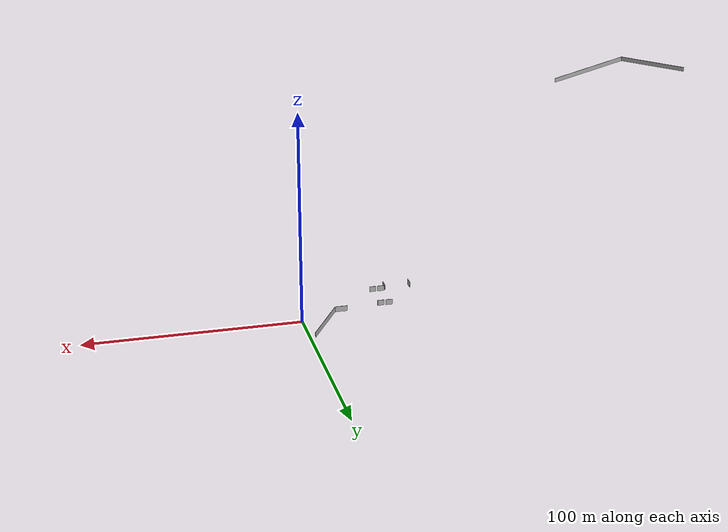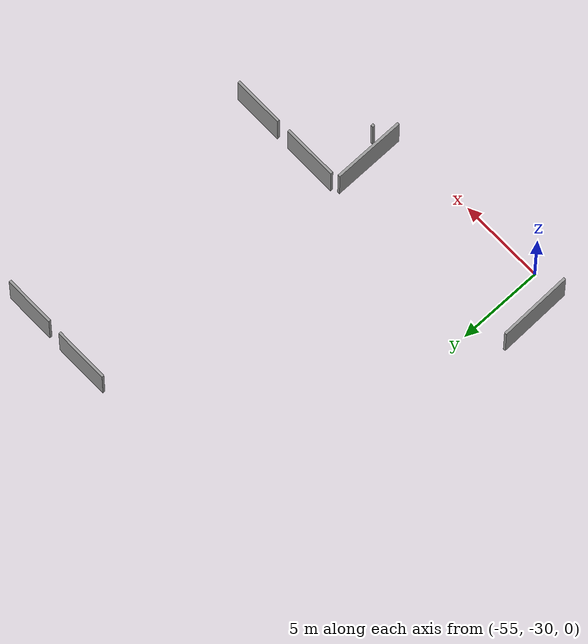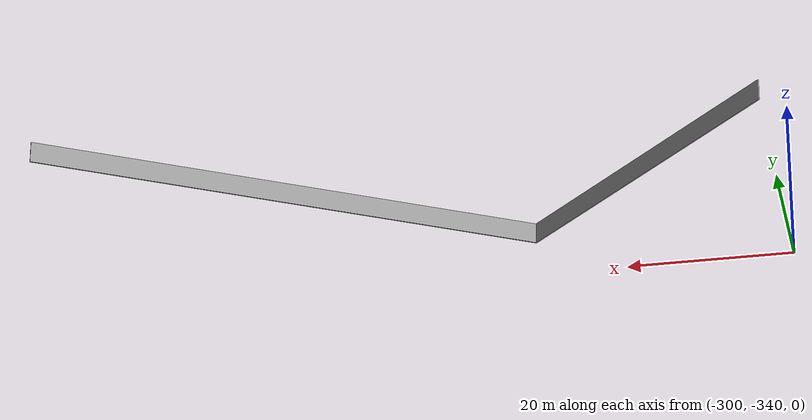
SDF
<?xml version='1.0'?>
<sdf version='1.7'>
  <model name='COMPLEMENTO_LAB'>
    <pose>-150.046 -157.023 0 0 -0 0</pose>
    <link name='Wall_106'>
      <collision name='Wall_106_Collision'>
        <geometry>
          <box>
            <size>61.5 0.15 2.5</size>
          </box>
        </geometry>
        <pose>0 0 1.25 0 -0 0</pose>
      </collision>
      <visual name='Wall_106_Visual'>
        <pose>0 0 1.25 0 -0 0</pose>
        <geometry>
          <box>
            <size>61.5 0.15 2.5</size>
          </box>
        </geometry>
        <material>
          <script>
            <uri>file://media/materials/scripts/gazebo.material</uri>
            <name>Gazebo/Grey</name>
          </script>
          <ambient>1 1 1 1</ambient>
        </material>
        <meta>
          <layer>0</layer>
        </meta>
      </visual>
      <pose>-93.7827 -159.299 0 0 -0 -2.61799</pose>
    </link>
    <link name='Wall_107'>
      <collision name='Wall_107_Collision'>
        <geometry>
          <box>
            <size>42 0.15 2.5</size>
          </box>
        </geometry>
        <pose>0 0 1.25 0 -0 0</pose>
      </collision>
      <visual name='Wall_107_Visual'>
        <pose>0 0 1.25 0 -0 0</pose>
        <geometry>
          <box>
            <size>42 0.15 2.5</size>
          </box>
        </geometry>
        <material>
          <script>
            <uri>file://media/materials/scripts/gazebo.material</uri>
            <name>Gazebo/Grey</name>
          </script>
          <ambient>1 1 1 1</ambient>
        </material>
        <meta>
          <layer>0</layer>
        </meta>
      </visual>
      <pose>-135.144 -159.84 0 0 -0 2.35619</pose>
    </link>
    <link name='Wall_109'>
      <collision name='Wall_109_Collision'>
        <geometry>
          <box>
            <size>5.75 0.15 2.5</size>
          </box>
        </geometry>
        <pose>0 0 1.25 0 -0 0</pose>
      </collision>
      <visual name='Wall_109_Visual'>
        <pose>0 0 1.25 0 -0 0</pose>
        <geometry>
          <box>
            <size>5.75 0.15 2.5</size>
          </box>
        </geometry>
        <material>
          <script>
            <uri>file://media/materials/scripts/gazebo.material</uri>
            <name>Gazebo/Grey</name>
          </script>
          <ambient>1 1 1 1</ambient>
        </material>
        <meta>
          <layer>0</layer>
        </meta>
      </visual>
      <pose>130.354 149.655 0 0 -0 0</pose>
    </link>
    <link name='Wall_110'>
      <collision name='Wall_110_Collision'>
        <geometry>
          <box>
            <size>29 0.15 2.5</size>
          </box>
        </geometry>
        <pose>0 0 1.25 0 -0 0</pose>
      </collision>
      <visual name='Wall_110_Visual'>
        <pose>0 0 1.25 0 -0 0</pose>
        <geometry>
          <box>
            <size>29 0.15 2.5</size>
          </box>
        </geometry>
        <material>
          <script>
            <uri>file://media/materials/scripts/gazebo.material</uri>
            <name>Gazebo/Grey</name>
          </script>
          <ambient>1 1 1 1</ambient>
        </material>
        <meta>
          <layer>0</layer>
        </meta>
      </visual>
      <pose>140.367 162.147 0 0 -0 1.0472</pose>
    </link>
    <link name='Wall_122'>
      <collision name='Wall_122_Collision'>
        <geometry>
          <box>
            <size>3 0.15 2.5</size>
          </box>
        </geometry>
        <pose>0 0 1.25 0 -0 0</pose>
      </collision>
      <visual name='Wall_122_Visual'>
        <pose>0 0 1.25 0 -0 0</pose>
        <geometry>
          <box>
            <size>3 0.15 2.5</size>
          </box>
        </geometry>
        <material>
          <script>
            <uri>file://media/materials/scripts/gazebo.material</uri>
            <name>Gazebo/Grey</name>
          </script>
          <ambient>1 1 1 1</ambient>
        </material>
        <meta>
          <layer>0</layer>
        </meta>
      </visual>
      <pose>111.086 131.492 0 0 -0 0</pose>
    </link>
    <link name='Wall_125'>
      <collision name='Wall_125_Collision'>
        <geometry>
          <box>
            <size>3.25 0.15 2.5</size>
          </box>
        </geometry>
        <pose>0 0 1.25 0 -0 0</pose>
      </collision>
      <visual name='Wall_125_Visual'>
        <pose>0 0 1.25 0 -0 0</pose>
        <geometry>
          <box>
            <size>3.25 0.15 2.5</size>
          </box>
        </geometry>
        <material>
          <script>
            <uri>file://media/materials/scripts/gazebo.material</uri>
            <name>Gazebo/Grey</name>
          </script>
          <ambient>1 1 1 1</ambient>
        </material>
        <meta>
          <layer>0</layer>
        </meta>
      </visual>
      <pose>107.228 131.469 0 0 -0 3.14159</pose>
    </link>
    <link name='Wall_134'>
      <collision name='Wall_134_Collision'>
        <geometry>
          <box>
            <size>3.25 0.15 2.5</size>
          </box>
        </geometry>
        <pose>0 0 1.25 0 -0 0</pose>
      </collision>
      <visual name='Wall_134_Visual'>
        <pose>0 0 1.25 0 -0 0</pose>
        <geometry>
          <box>
            <size>3.25 0.15 2.5</size>
          </box>
        </geometry>
        <material>
          <script>
            <uri>file://media/materials/scripts/gazebo.material</uri>
            <name>Gazebo/Grey</name>
          </script>
          <ambient>1 1 1 1</ambient>
        </material>
        <meta>
          <layer>0</layer>
        </meta>
      </visual>
      <pose>107.209 147.579 0 0 -0 0</pose>
    </link>
    <link name='Wall_136'>
      <collision name='Wall_136_Collision'>
        <geometry>
          <box>
            <size>3 0.15 2.5</size>
          </box>
        </geometry>
        <pose>0 0 1.25 0 -0 0</pose>
      </collision>
      <visual name='Wall_136_Visual'>
        <pose>0 0 1.25 0 -0 0</pose>
        <geometry>
          <box>
            <size>3 0.15 2.5</size>
          </box>
        </geometry>
        <material>
          <script>
            <uri>file://media/materials/scripts/gazebo.material</uri>
            <name>Gazebo/Grey</name>
          </script>
          <ambient>1 1 1 1</ambient>
        </material>
        <meta>
          <layer>0</layer>
        </meta>
      </visual>
      <pose>111.147 147.518 0 0 -0 0</pose>
    </link>
    <link name='Wall_138'>
      <collision name='Wall_138_Collision'>
        <geometry>
          <box>
            <size>4.25 0.15 2.5</size>
          </box>
        </geometry>
        <pose>0 0 1.25 0 -0 0</pose>
      </collision>
      <visual name='Wall_138_Visual'>
        <pose>0 0 1.25 0 -0 0</pose>
        <geometry>
          <box>
            <size>4.25 0.15 2.5</size>
          </box>
        </geometry>
        <material>
          <script>
            <uri>file://media/materials/scripts/gazebo.material</uri>
            <name>Gazebo/Grey</name>
          </script>
          <ambient>1 1 1 1</ambient>
        </material>
        <meta>
          <layer>0</layer>
        </meta>
      </visual>
      <pose>105.248 129.193 0 0 -0 -1.5708</pose>
    </link>
    <link name='Wall_140'>
      <collision name='Wall_140_Collision'>
        <geometry>
          <box>
            <size>0.15 0.15 2.5</size>
          </box>
        </geometry>
        <pose>0 0 1.25 0 -0 0</pose>
      </collision>
      <visual name='Wall_140_Visual'>
        <pose>0 0 1.25 0 -0 0</pose>
        <geometry>
          <box>
            <size>0.15 0.15 2.5</size>
          </box>
        </geometry>
        <material>
          <script>
            <uri>file://media/materials/scripts/gazebo.material</uri>
            <name>Gazebo/Grey</name>
          </script>
          <ambient>1 1 1 1</ambient>
        </material>
        <meta>
          <layer>0</layer>
        </meta>
      </visual>
      <pose>106.07 128.113 0 0 -0 0</pose>
    </link>
    <link name='Wall_144'>
      <collision name='Wall_144_Collision'>
        <geometry>
          <box>
            <size>4.30059 0.15 2.5</size>
          </box>
        </geometry>
        <pose>0 0 1.25 0 -0 0</pose>
      </collision>
      <visual name='Wall_144_Visual'>
        <pose>0 0 1.25 0 -0 0</pose>
        <geometry>
          <box>
            <size>4.30059 0.15 2.5</size>
          </box>
        </geometry>
        <material>
          <script>
            <uri>file://media/materials/scripts/gazebo.material</uri>
            <name>Gazebo/Grey</name>
          </script>
          <ambient>1 1 1 1</ambient>
        </material>
        <meta>
          <layer>0</layer>
        </meta>
      </visual>
      <pose>93.1938 128.887 0 0 -0 1.59007</pose>
    </link>
    <static>1</static>
  </model>
</sdf>
